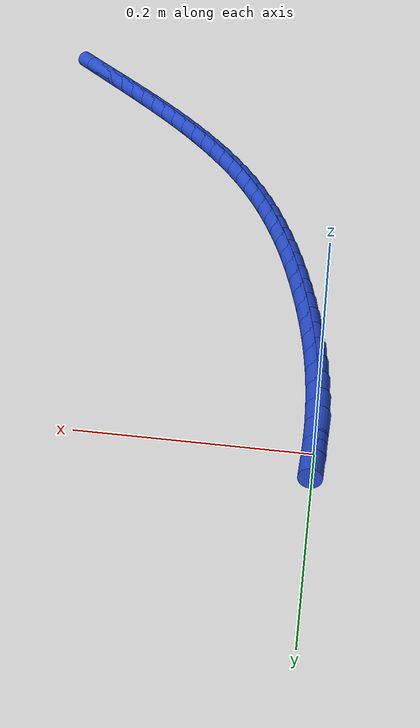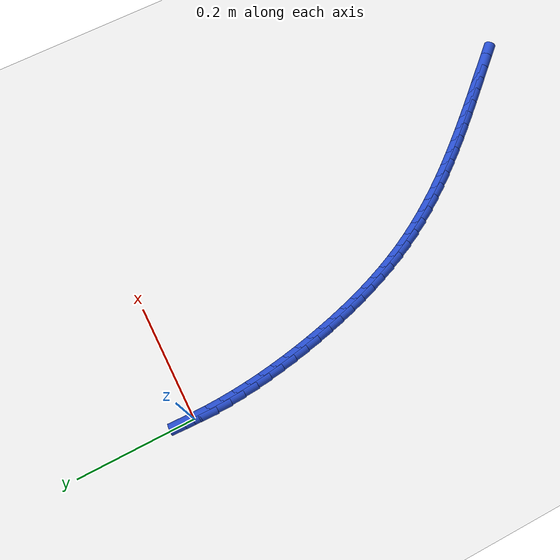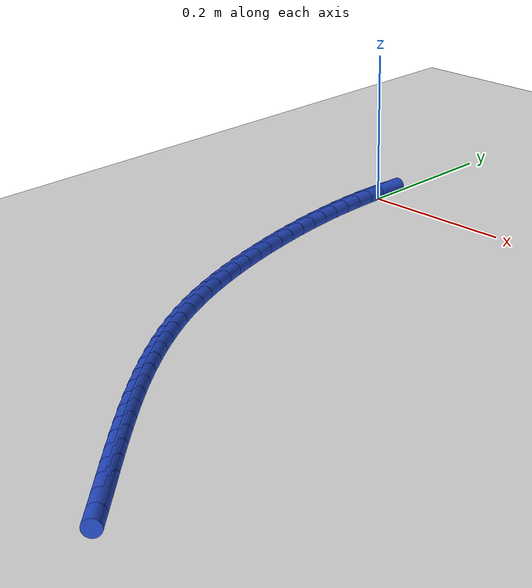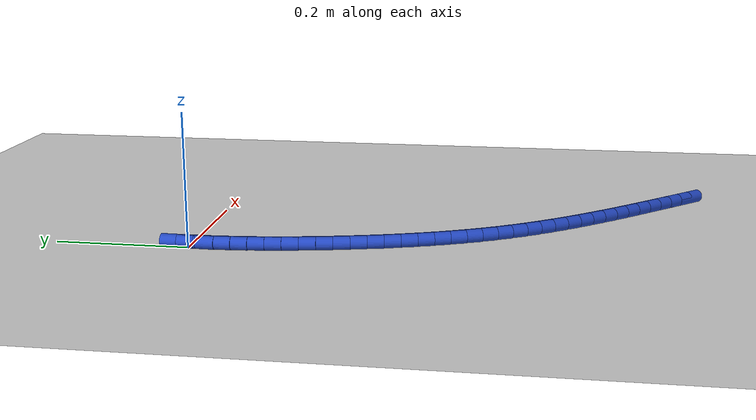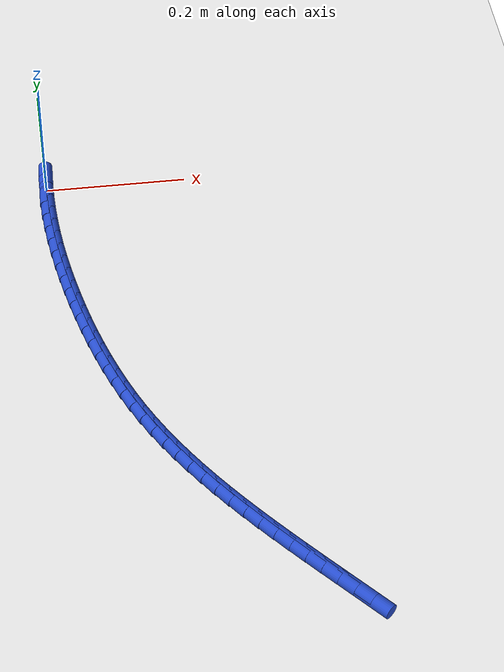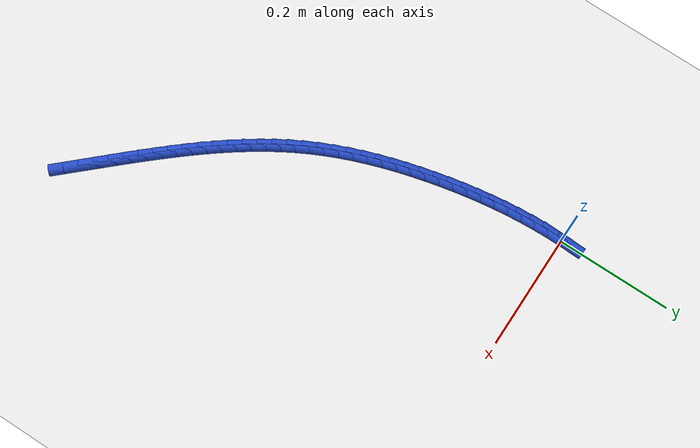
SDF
<sdf version="1.6">
 <world name="default">
  <model name="ground_plane">
   <static>1</static>
   <link name="link">
    <collision name="collision">
     <geometry><plane><normal>0 0 1</normal><size>100 100</size></plane></geometry>
     <surface><friction><ode><mu>100</mu><mu2>50</mu2></ode></friction></surface>
    </collision>
    <visual name="visual">
     <cast_shadows>0</cast_shadows>
     <geometry><plane><normal>0 0 1</normal><size>100 100</size></plane></geometry>
     <material>
      <script><uri>file://media/materials/scripts/gazebo.material</uri><name>Gazebo/WhiteGlow</name></script>
     </material>
    </visual>
   </link>
  </model>
  <model name="line">
   <link name="link_0">
    <pose>4.336808689942018e-18 2.7755575615628914e-17 0.01 0 1.57 1.541240628306866</pose>
    <collision name="collision">
     <geometry><cylinder><radius>0.01</radius><length>0.08</length></cylinder></geometry>
    </collision>
    <visual name="visual">
     <material>
      <script><name>Gazebo/Blue</name><uri>file://media/materials/scripts/gazebo.material</uri></script>
     </material>
     <geometry><cylinder><radius>0.01</radius><length>0.08</length></cylinder></geometry>
    </visual>
   </link>
   <link name="link_246">
    <pose>0.3344876847139203 -0.7349572977485057 0.01 0 1.57 -0.826396746250947</pose>
    <collision name="collision">
     <geometry><cylinder><radius>0.01</radius><length>0.08</length></cylinder></geometry>
    </collision>
    <visual name="visual">
     <material>
      <script><name>Gazebo/Blue</name><uri>file://media/materials/scripts/gazebo.material</uri></script>
     </material>
     <geometry><cylinder><radius>0.01</radius><length>0.08</length></cylinder></geometry>
    </visual>
   </link>
   <link name="link_247">
    <pose>0.31782433484151895 -0.7168683542552772 0.01 0 1.57 -0.8262163141911752</pose>
    <collision name="collision">
     <geometry><cylinder><radius>0.01</radius><length>0.08</length></cylinder></geometry>
    </collision>
    <visual name="visual">
     <material>
      <script><name>Gazebo/Blue</name><uri>file://media/materials/scripts/gazebo.material</uri></script>
     </material>
     <geometry><cylinder><radius>0.01</radius><length>0.08</length></cylinder></geometry>
    </visual>
   </link>
   <link name="link_248">
    <pose>0.30113082321517187 -0.6987532288175327 0.01 0 1.57 -0.8284607764284031</pose>
    <collision name="collision">
     <geometry><cylinder><radius>0.01</radius><length>0.08</length></cylinder></geometry>
    </collision>
    <visual name="visual">
     <material>
      <script><name>Gazebo/Blue</name><uri>file://media/materials/scripts/gazebo.material</uri></script>
     </material>
     <geometry><cylinder><radius>0.01</radius><length>0.08</length></cylinder></geometry>
    </visual>
   </link>
   <link name="link_249">
    <pose>0.28446222707203217 -0.6805834742332605 0.01 0 1.57 -0.8331377755774833</pose>
    <collision name="collision">
     <geometry><cylinder><radius>0.01</radius><length>0.08</length></cylinder></geometry>
    </collision>
    <visual name="visual">
     <material>
      <script><name>Gazebo/Blue</name><uri>file://media/materials/scripts/gazebo.material</uri></script>
     </material>
     <geometry><cylinder><radius>0.01</radius><length>0.08</length></cylinder></geometry>
    </visual>
   </link>
   <link name="link_250">
    <pose>0.267873884071521 -0.6623305582910481 0.01 0 1.57 -0.8402541068223964</pose>
    <collision name="collision">
     <geometry><cylinder><radius>0.01</radius><length>0.08</length></cylinder></geometry>
    </collision>
    <visual name="visual">
     <material>
      <script><name>Gazebo/Blue</name><uri>file://media/materials/scripts/gazebo.material</uri></script>
     </material>
     <geometry><cylinder><radius>0.01</radius><length>0.08</length></cylinder></geometry>
    </visual>
   </link>
   <link name="link_251">
    <pose>0.25142113187305953 -0.6439659487794814 0.01 0 1.57 -0.8498250399280277</pose>
    <collision name="collision">
     <geometry><cylinder><radius>0.01</radius><length>0.08</length></cylinder></geometry>
    </collision>
    <visual name="visual">
     <material>
      <script><name>Gazebo/Blue</name><uri>file://media/materials/scripts/gazebo.material</uri></script>
     </material>
     <geometry><cylinder><radius>0.01</radius><length>0.08</length></cylinder></geometry>
    </visual>
   </link>
   <link name="link_252">
    <pose>0.2351593081360684 -0.6254611134871465 0.01 0 1.57 -0.8618731363241773</pose>
    <collision name="collision">
     <geometry><cylinder><radius>0.01</radius><length>0.08</length></cylinder></geometry>
    </collision>
    <visual name="visual">
     <material>
      <script><name>Gazebo/Blue</name><uri>file://media/materials/scripts/gazebo.material</uri></script>
     </material>
     <geometry><cylinder><radius>0.01</radius><length>0.08</length></cylinder></geometry>
    </visual>
   </link>
   <link name="link_253">
    <pose>0.21914375051996948 -0.6067875202026309 0.01 0 1.57 -0.8764266441318803</pose>
    <collision name="collision">
     <geometry><cylinder><radius>0.01</radius><length>0.08</length></cylinder></geometry>
    </collision>
    <visual name="visual">
     <material>
      <script><name>Gazebo/Blue</name><uri>file://media/materials/scripts/gazebo.material</uri></script>
     </material>
     <geometry><cylinder><radius>0.01</radius><length>0.08</length></cylinder></geometry>
    </visual>
   </link>
   <link name="link_254">
    <pose>0.20342979668418362 -0.5879166367145207 0.01 0 1.57 -0.8935174105415785</pose>
    <collision name="collision">
     <geometry><cylinder><radius>0.01</radius><length>0.08</length></cylinder></geometry>
    </collision>
    <visual name="visual">
     <material>
      <script><name>Gazebo/Blue</name><uri>file://media/materials/scripts/gazebo.material</uri></script>
     </material>
     <geometry><cylinder><radius>0.01</radius><length>0.08</length></cylinder></geometry>
    </visual>
   </link>
   <link name="link_255">
    <pose>0.18807278428813176 -0.5688199308114019 0.01 0 1.57 -0.9131782436030534</pose>
    <collision name="collision">
     <geometry><cylinder><radius>0.01</radius><length>0.08</length></cylinder></geometry>
    </collision>
    <visual name="visual">
     <material>
      <script><name>Gazebo/Blue</name><uri>file://media/materials/scripts/gazebo.material</uri></script>
     </material>
     <geometry><cylinder><radius>0.01</radius><length>0.08</length></cylinder></geometry>
    </visual>
   </link>
   <link name="link_256">
    <pose>0.1731280509912351 -0.5494688702818616 0.01 0 1.57 -0.9354396574960111</pose>
    <collision name="collision">
     <geometry><cylinder><radius>0.01</radius><length>0.08</length></cylinder></geometry>
    </collision>
    <visual name="visual">
     <material>
      <script><name>Gazebo/Blue</name><uri>file://media/materials/scripts/gazebo.material</uri></script>
     </material>
     <geometry><cylinder><radius>0.01</radius><length>0.08</length></cylinder></geometry>
    </visual>
   </link>
   <link name="link_257">
    <pose>0.15865093445291478 -0.5298349229144862 0.01 0 1.57 -0.9603259508555044</pose>
    <collision name="collision">
     <geometry><cylinder><radius>0.01</radius><length>0.08</length></cylinder></geometry>
    </collision>
    <visual name="visual">
     <material>
      <script><name>Gazebo/Blue</name><uri>file://media/materials/scripts/gazebo.material</uri></script>
     </material>
     <geometry><cylinder><radius>0.01</radius><length>0.08</length></cylinder></geometry>
    </visual>
   </link>
   <link name="link_258">
    <pose>0.14469677233259176 -0.5098895564978616 0.01 0 1.57 -0.9878506016302423</pose>
    <collision name="collision">
     <geometry><cylinder><radius>0.01</radius><length>0.08</length></cylinder></geometry>
    </collision>
    <visual name="visual">
     <material>
      <script><name>Gazebo/Blue</name><uri>file://media/materials/scripts/gazebo.material</uri></script>
     </material>
     <geometry><cylinder><radius>0.01</radius><length>0.08</length></cylinder></geometry>
    </visual>
   </link>
   <link name="link_259">
    <pose>0.13132090228968726 -0.4896042388205749 0.01 0 1.57 -1.018011019206323</pose>
    <collision name="collision">
     <geometry><cylinder><radius>0.01</radius><length>0.08</length></cylinder></geometry>
    </collision>
    <visual name="visual">
     <material>
      <script><name>Gazebo/Blue</name><uri>file://media/materials/scripts/gazebo.material</uri></script>
     </material>
     <geometry><cylinder><radius>0.01</radius><length>0.08</length></cylinder></geometry>
    </visual>
   </link>
   <link name="link_260">
    <pose>0.11857866198362237 -0.46895043767121236 0.01 0 1.57 -1.0507827787529063</pose>
    <collision name="collision">
     <geometry><cylinder><radius>0.01</radius><length>0.08</length></cylinder></geometry>
    </collision>
    <visual name="visual">
     <material>
      <script><name>Gazebo/Blue</name><uri>file://media/materials/scripts/gazebo.material</uri></script>
     </material>
     <geometry><cylinder><radius>0.01</radius><length>0.08</length></cylinder></geometry>
    </visual>
   </link>
   <link name="link_261">
    <pose>0.10652538907381778 -0.44789962083835977 0.01 0 1.57 -1.086082922205734</pose>
    <collision name="collision">
     <geometry><cylinder><radius>0.01</radius><length>0.08</length></cylinder></geometry>
    </collision>
    <visual name="visual">
     <material>
      <script><name>Gazebo/Blue</name><uri>file://media/materials/scripts/gazebo.material</uri></script>
     </material>
     <geometry><cylinder><radius>0.01</radius><length>0.08</length></cylinder></geometry>
    </visual>
   </link>
   <link name="link_262">
    <pose>0.09521582162467655 -0.4264237142087033 0.01 0 1.57 -1.1221478442968802</pose>
    <collision name="collision">
     <geometry><cylinder><radius>0.01</radius><length>0.08</length></cylinder></geometry>
    </collision>
    <visual name="visual">
     <material>
      <script><name>Gazebo/Blue</name><uri>file://media/materials/scripts/gazebo.material</uri></script>
     </material>
     <geometry><cylinder><radius>0.01</radius><length>0.08</length></cylinder></geometry>
    </visual>
   </link>
   <link name="link_263">
    <pose>0.08467158195283 -0.40451994451466683 0.01 0 1.57 -1.1564163123563653</pose>
    <collision name="collision">
     <geometry><cylinder><radius>0.01</radius><length>0.08</length></cylinder></geometry>
    </collision>
    <visual name="visual">
     <material>
      <script><name>Gazebo/Blue</name><uri>file://media/materials/scripts/gazebo.material</uri></script>
     </material>
     <geometry><cylinder><radius>0.01</radius><length>0.08</length></cylinder></geometry>
    </visual>
   </link>
   <link name="link_264">
    <pose>0.07486454319702847 -0.3822235474831868 0.01 0 1.57 -1.188699998342551</pose>
    <collision name="collision">
     <geometry><cylinder><radius>0.01</radius><length>0.08</length></cylinder></geometry>
    </collision>
    <visual name="visual">
     <material>
      <script><name>Gazebo/Blue</name><uri>file://media/materials/scripts/gazebo.material</uri></script>
     </material>
     <geometry><cylinder><radius>0.01</radius><length>0.08</length></cylinder></geometry>
    </visual>
   </link>
   <link name="link_265">
    <pose>0.0657624785054866 -0.35957289128527975 0.01 0 1.57 -1.219034916121708</pose>
    <collision name="collision">
     <geometry><cylinder><radius>0.01</radius><length>0.08</length></cylinder></geometry>
    </collision>
    <visual name="visual">
     <material>
      <script><name>Gazebo/Blue</name><uri>file://media/materials/scripts/gazebo.material</uri></script>
     </material>
     <geometry><cylinder><radius>0.01</radius><length>0.08</length></cylinder></geometry>
    </visual>
   </link>
   <link name="link_266">
    <pose>0.057333161026419124 -0.3366063440919626 0.01 0 1.57 -1.2474678615793764</pose>
    <collision name="collision">
     <geometry><cylinder><radius>0.01</radius><length>0.08</length></cylinder></geometry>
    </collision>
    <visual name="visual">
     <material>
      <script><name>Gazebo/Blue</name><uri>file://media/materials/scripts/gazebo.material</uri></script>
     </material>
     <geometry><cylinder><radius>0.01</radius><length>0.08</length></cylinder></geometry>
    </visual>
   </link>
   <link name="link_267">
    <pose>0.049544363908040664 -0.31336227407425216 0.01 0 1.57 -1.27405291691699</pose>
    <collision name="collision">
     <geometry><cylinder><radius>0.01</radius><length>0.08</length></cylinder></geometry>
    </collision>
    <visual name="visual">
     <material>
      <script><name>Gazebo/Blue</name><uri>file://media/materials/scripts/gazebo.material</uri></script>
     </material>
     <geometry><cylinder><radius>0.01</radius><length>0.08</length></cylinder></geometry>
    </visual>
   </link>
   <link name="link_268">
    <pose>0.042363860298565884 -0.28987904940316506 0.01 0 1.57 -1.2988484427083276</pose>
    <collision name="collision">
     <geometry><cylinder><radius>0.01</radius><length>0.08</length></cylinder></geometry>
    </collision>
    <visual name="visual">
     <material>
      <script><name>Gazebo/Blue</name><uri>file://media/materials/scripts/gazebo.material</uri></script>
     </material>
     <geometry><cylinder><radius>0.01</radius><length>0.08</length></cylinder></geometry>
    </visual>
   </link>
   <link name="link_269">
    <pose>0.03575942334620949 -0.2661950382497183 0.01 0 1.57 -1.3219145439484858</pose>
    <collision name="collision">
     <geometry><cylinder><radius>0.01</radius><length>0.08</length></cylinder></geometry>
    </collision>
    <visual name="visual">
     <material>
      <script><name>Gazebo/Blue</name><uri>file://media/materials/scripts/gazebo.material</uri></script>
     </material>
     <geometry><cylinder><radius>0.01</radius><length>0.08</length></cylinder></geometry>
    </visual>
   </link>
   <link name="link_270">
    <pose>0.029698826199185926 -0.24234860878492784 0.01 0 1.57 -1.3433133071673977</pose>
    <collision name="collision">
     <geometry><cylinder><radius>0.01</radius><length>0.08</length></cylinder></geometry>
    </collision>
    <visual name="visual">
     <material>
      <script><name>Gazebo/Blue</name><uri>file://media/materials/scripts/gazebo.material</uri></script>
     </material>
     <geometry><cylinder><radius>0.01</radius><length>0.08</length></cylinder></geometry>
    </visual>
   </link>
   <link name="link_271">
    <pose>0.024149895814122732 -0.21837810660528661 0.01 0 1.57 -1.363824645625102</pose>
    <collision name="collision">
     <geometry><cylinder><radius>0.01</radius><length>0.08</length></cylinder></geometry>
    </collision>
    <visual name="visual">
     <material>
      <script><name>Gazebo/Blue</name><uri>file://media/materials/scripts/gazebo.material</uri></script>
     </material>
     <geometry><cylinder><radius>0.01</radius><length>0.08</length></cylinder></geometry>
    </visual>
   </link>
   <link name="link_272">
    <pose>0.01909713394774879 -0.19431488164100824 0.01 0 1.57 -1.3852336231423017</pose>
    <collision name="collision">
     <geometry><cylinder><radius>0.01</radius><length>0.08</length></cylinder></geometry>
    </collision>
    <visual name="visual">
     <material>
      <script><name>Gazebo/Blue</name><uri>file://media/materials/scripts/gazebo.material</uri></script>
     </material>
     <geometry><cylinder><radius>0.01</radius><length>0.08</length></cylinder></geometry>
    </visual>
   </link>
   <link name="link_273">
    <pose>0.014565242637630194 -0.1701734183878022 0.01 0 1.57 -1.4078283095687258</pose>
    <collision name="collision">
     <geometry><cylinder><radius>0.01</radius><length>0.08</length></cylinder></geometry>
    </collision>
    <visual name="visual">
     <material>
      <script><name>Gazebo/Blue</name><uri>file://media/materials/scripts/gazebo.material</uri></script>
     </material>
     <geometry><cylinder><radius>0.01</radius><length>0.08</length></cylinder></geometry>
    </visual>
   </link>
   <link name="link_274">
    <pose>0.010584860228505641 -0.14596571085131874 0.01 0 1.57 -1.4316372804673188</pose>
    <collision name="collision">
     <geometry><cylinder><radius>0.01</radius><length>0.08</length></cylinder></geometry>
    </collision>
    <visual name="visual">
     <material>
      <script><name>Gazebo/Blue</name><uri>file://media/materials/scripts/gazebo.material</uri></script>
     </material>
     <geometry><cylinder><radius>0.01</radius><length>0.08</length></cylinder></geometry>
    </visual>
   </link>
   <link name="link_275">
    <pose>0.007186625065113826 -0.12170375303720803 0.01 0 1.57 -1.4566865172586487</pose>
    <collision name="collision">
     <geometry><cylinder><radius>0.01</radius><length>0.08</length></cylinder></geometry>
    </collision>
    <visual name="visual">
     <material>
      <script><name>Gazebo/Blue</name><uri>file://media/materials/scripts/gazebo.material</uri></script>
     </material>
     <geometry><cylinder><radius>0.01</radius><length>0.08</length></cylinder></geometry>
    </visual>
   </link>
   <link name="link_276">
    <pose>0.0044011754921934355 -0.09739953895112019 0.01 0 1.57 -1.482998305310953</pose>
    <collision name="collision">
     <geometry><cylinder><radius>0.01</radius><length>0.08</length></cylinder></geometry>
    </collision>
    <visual name="visual">
     <material>
      <script><name>Gazebo/Blue</name><uri>file://media/materials/scripts/gazebo.material</uri></script>
     </material>
     <geometry><cylinder><radius>0.01</radius><length>0.08</length></cylinder></geometry>
    </visual>
   </link>
   <link name="link_277">
    <pose>0.002259149854483166 -0.07306506259870538 0.01 0 1.57 -1.5105900026053452</pose>
    <collision name="collision">
     <geometry><cylinder><radius>0.01</radius><length>0.08</length></cylinder></geometry>
    </collision>
    <visual name="visual">
     <material>
      <script><name>Gazebo/Blue</name><uri>file://media/materials/scripts/gazebo.material</uri></script>
     </material>
     <geometry><cylinder><radius>0.01</radius><length>0.08</length></cylinder></geometry>
    </visual>
   </link>
   <link name="link_278">
    <pose>0.000791186496721706 -0.048712317985613776 0.01 0 1.57 -1.5394726888998123</pose>
    <collision name="collision">
     <geometry><cylinder><radius>0.01</radius><length>0.08</length></cylinder></geometry>
    </collision>
    <visual name="visual">
     <material>
      <script><name>Gazebo/Blue</name><uri>file://media/materials/scripts/gazebo.material</uri></script>
     </material>
     <geometry><cylinder><radius>0.01</radius><length>0.08</length></cylinder></geometry>
    </visual>
   </link>
   <link name="link_279">
    <pose>2.7923763647739238e-05 -0.02435329911749472 0.01 0 1.57 -1.5696497161744734</pose>
    <collision name="collision">
     <geometry><cylinder><radius>0.01</radius><length>0.08</length></cylinder></geometry>
    </collision>
    <visual name="visual">
     <material>
      <script><name>Gazebo/Blue</name><uri>file://media/materials/scripts/gazebo.material</uri></script>
     </material>
     <geometry><cylinder><radius>0.01</radius><length>0.08</length></cylinder></geometry>
    </visual>
   </link>
  </model>
 </world>
</sdf>
